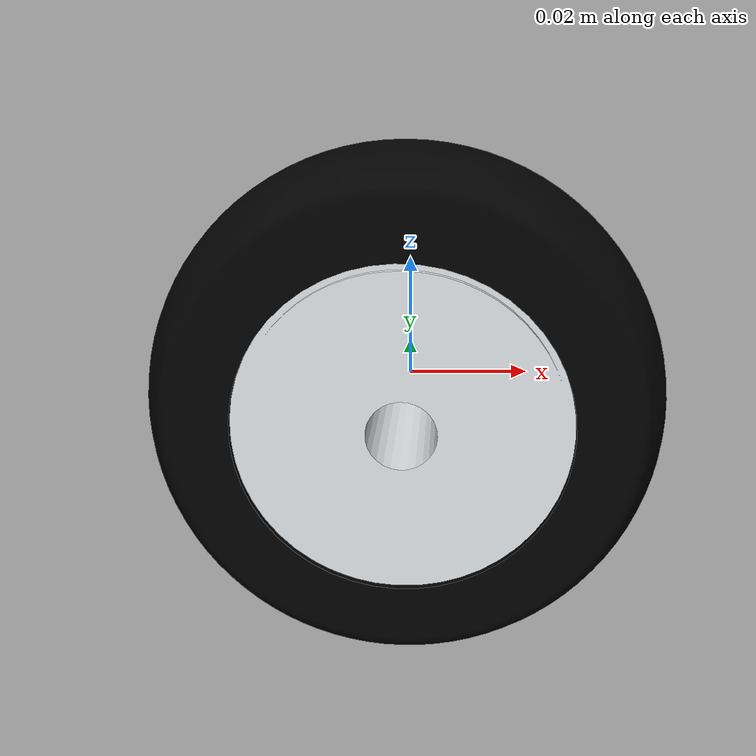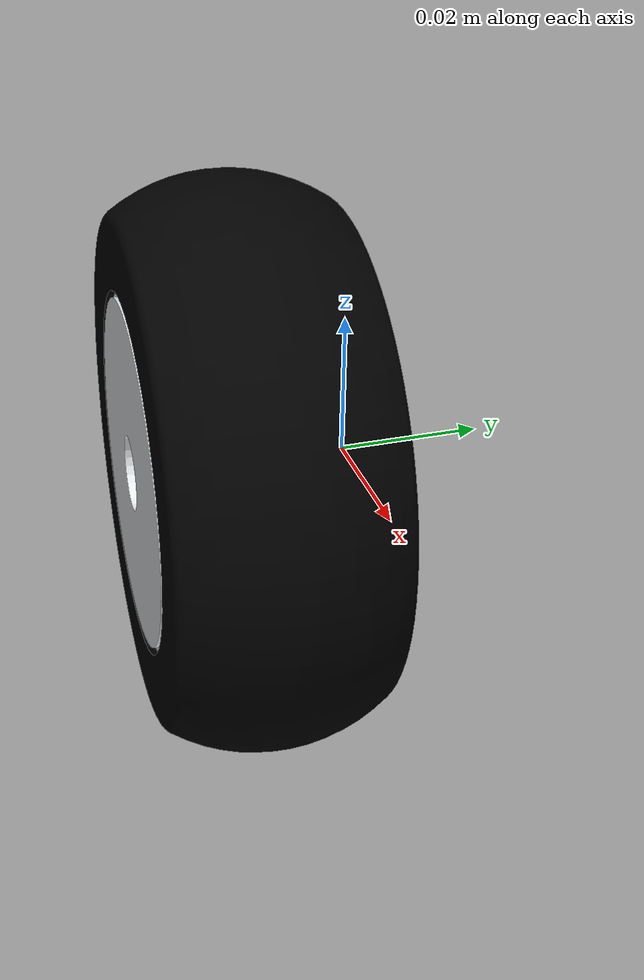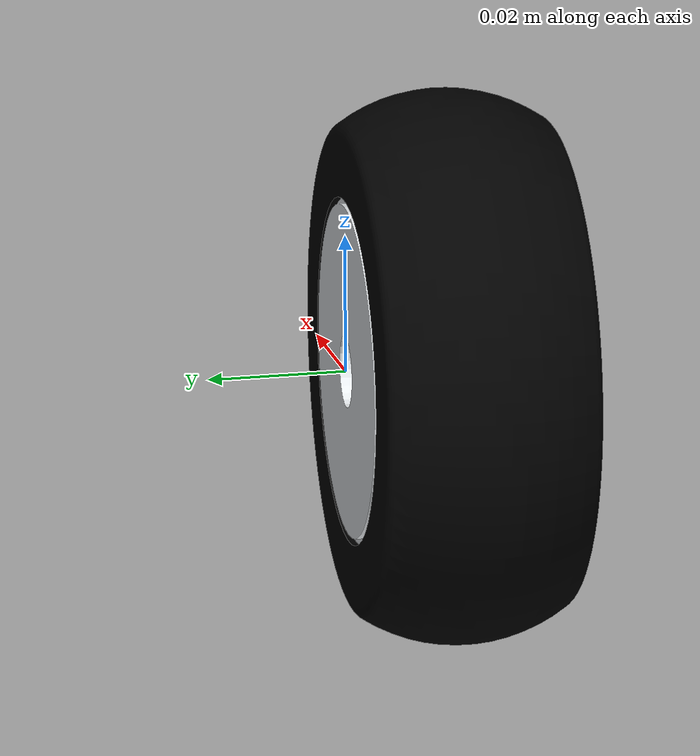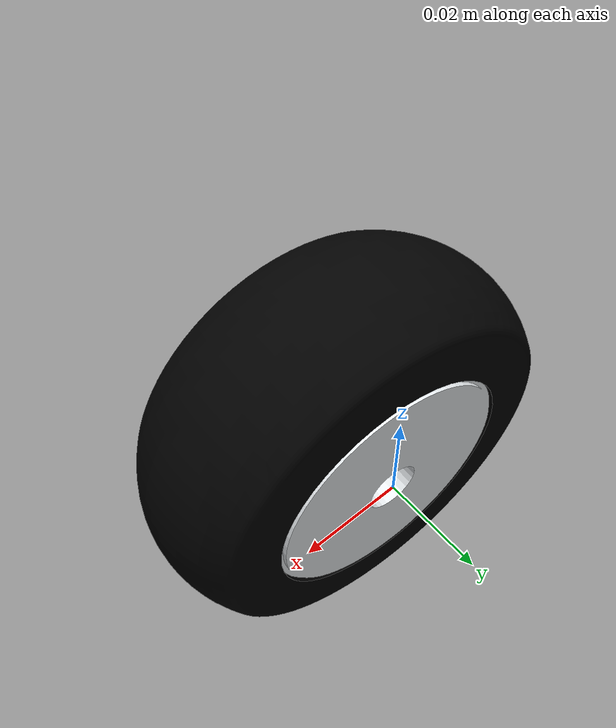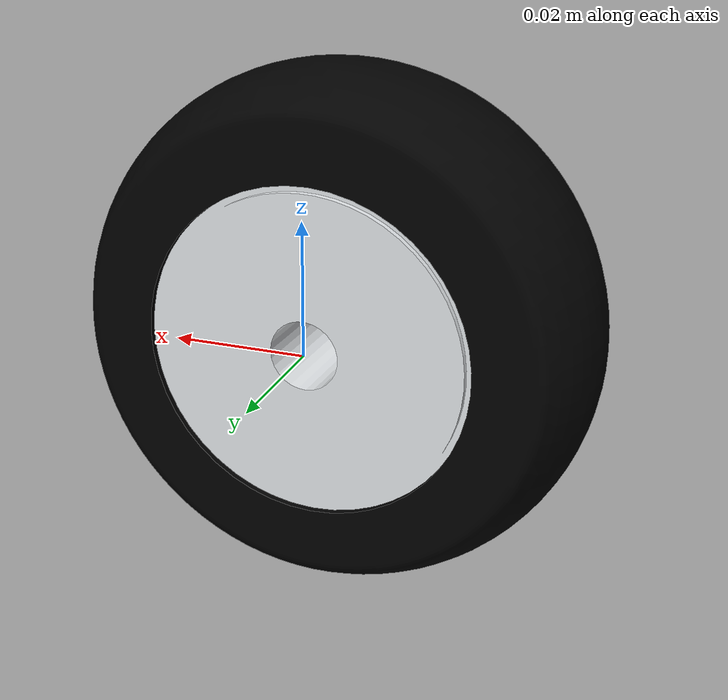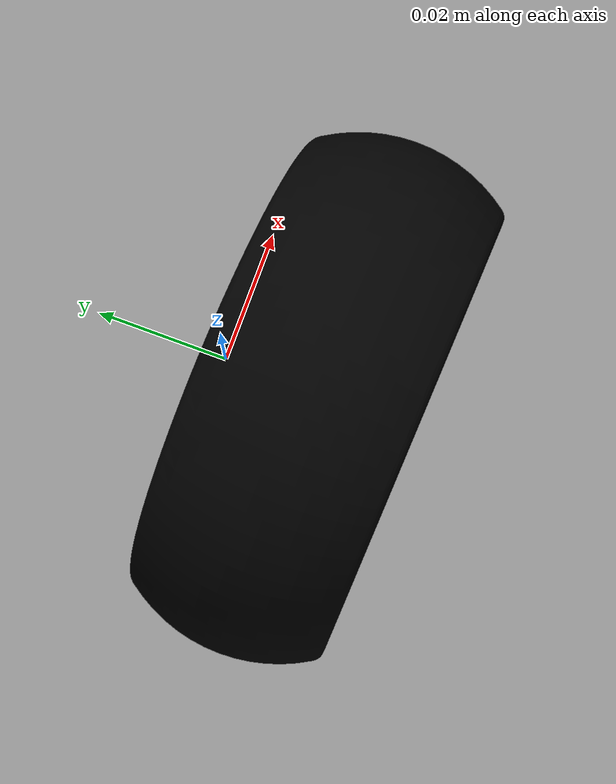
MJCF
<mujoco model="B_wheel_l2">
  <default>
    <default class="visual">
      <geom group="2" type="mesh" contype="0" conaffinity="0"/>
    </default>
    <default class="collision">
      <geom group="3" type="mesh"/>
    </default>
  </default>
  <asset>
    <material name="material_0" specular="0.4000000000000001" shininess="0.001" rgba="0.89803922 0.91372549 0.92549020 1.0"/>
    <material name="material_1" specular="0.4000000000000001" shininess="0.001" rgba="0.00000000 0.00000000 0.00000000 1.0"/>
    <mesh file="B_wheel_l2_0.obj"/>
    <mesh file="B_wheel_l2_1.obj"/>
  </asset>
  <worldbody>
    <body name="B_wheel_l2">
      <geom mesh="B_wheel_l2_0" material="material_1" class="visual"/>
      <geom mesh="B_wheel_l2_1" material="material_0" class="visual"/>
    </body>
  </worldbody>
</mujoco>
